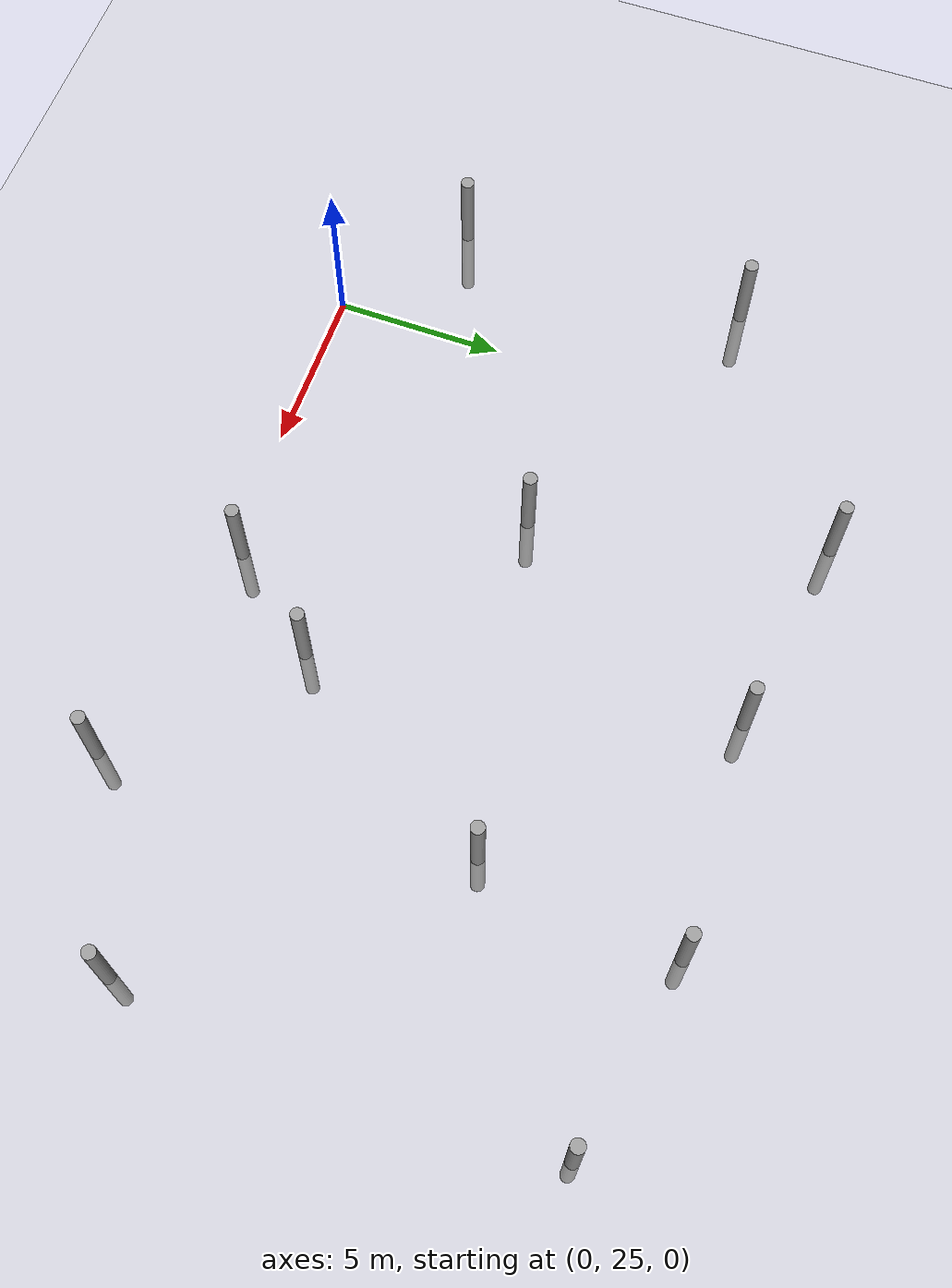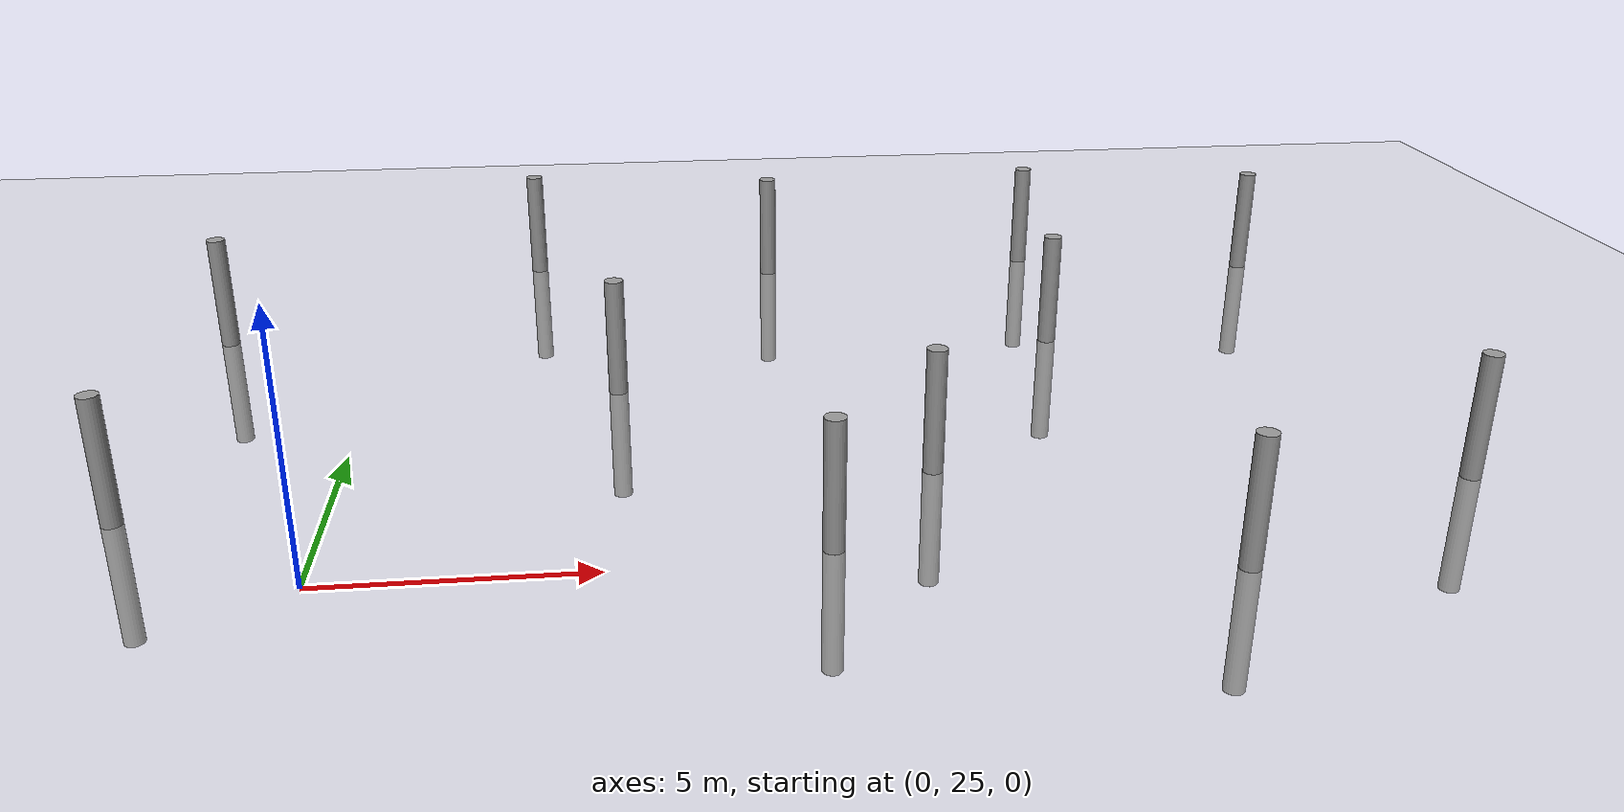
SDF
<sdf version="1.6">
 <world name="default">
  <model name="ground_plane">
   <static>1</static>
   <link name="link">
    <collision name="collision">
     <geometry><plane><normal>0 0 1</normal><size>100 100</size></plane></geometry>
     <surface><friction><ode><mu>100</mu><mu2>50</mu2></ode></friction></surface>
    </collision>
    <visual name="visual">
     <cast_shadows>0</cast_shadows>
     <geometry><plane><normal>0 0 1</normal><size>100 100</size></plane></geometry>
     <material>
      <script><uri>file://media/materials/scripts/gazebo.material</uri><name>Gazebo/Grey</name></script>
     </material>
    </visual>
   </link>
  </model>
  <model name="empty_pillars_4">
   <model name="empty_pillar">
    <link name="link">
     <inertial>
      <mass>1</mass>
      <inertia><ixx>0.145833</ixx><ixy>0</ixy><ixz>0</ixz><iyy>0.145833</iyy><iyz>0</iyz><izz>0.125</izz></inertia>
     </inertial>
     <visual name="visual">
      <geometry><cylinder><radius>0.2</radius><length>5</length></cylinder></geometry>
      <material>
       <script><name>Gazebo/Grey</name><uri>file://media/materials/scripts/gazebo.material</uri></script>
       <shader type="vertex"><normal_map>__default__</normal_map></shader>
       <ambient>0.3 0.3 0.3 1</ambient>
       <diffuse>0.7 0.7 0.7 1</diffuse>
       <specular>0.01 0.01 0.01 1</specular>
       <emissive>0 0 0 1</emissive>
      </material>
     </visual>
     <collision name="collision">
      <geometry><cylinder><radius>0.05</radius><length>5</length></cylinder></geometry>
      <surface>
       <friction>
        <ode><mu>1</mu><mu2>1</mu2><fdir1>0 0 0</fdir1><slip1>0</slip1><slip2>0</slip2></ode>
        <torsional>
         <coefficient>1</coefficient>
         <patch_radius>0</patch_radius>
         <surface_radius>0</surface_radius>
         <use_patch_radius>1</use_patch_radius>
         <ode><slip>0</slip></ode>
        </torsional>
       </friction>
       <bounce><restitution_coefficient>0</restitution_coefficient><threshold>1e+06</threshold></bounce>
       <contact>
        <collide_without_contact>0</collide_without_contact>
        <collide_without_contact_bitmask>1</collide_without_contact_bitmask>
        <collide_bitmask>1</collide_bitmask>
        <ode>
         <soft_cfm>0</soft_cfm>
         <soft_erp>0.2</soft_erp>
         <kp>1e+13</kp>
         <kd>1</kd>
         <max_vel>0.01</max_vel>
         <min_depth>0</min_depth>
        </ode>
        <bullet>
         <split_impulse>1</split_impulse>
         <split_impulse_penetration_threshold>-0.01</split_impulse_penetration_threshold>
         <soft_cfm>0</soft_cfm>
         <soft_erp>0.2</soft_erp>
         <kp>1e+13</kp>
         <kd>1</kd>
        </bullet>
       </contact>
      </surface>
     </collision>
    </link>
    <static>0</static>
    <pose>-3.84527 -0.717439 0 0 -0 0</pose>
   </model>
   <model name="empty_pillar_clone_14">
    <link name="link">
     <inertial>
      <mass>1</mass>
      <inertia><ixx>0.145833</ixx><ixy>0</ixy><ixz>0</ixz><iyy>0.145833</iyy><iyz>0</iyz><izz>0.125</izz></inertia>
     </inertial>
     <visual name="visual">
      <geometry><cylinder><radius>0.2</radius><length>5</length></cylinder></geometry>
      <material>
       <script><name>Gazebo/Grey</name><uri>file://media/materials/scripts/gazebo.material</uri></script>
       <shader type="vertex"><normal_map>__default__</normal_map></shader>
       <ambient>0.3 0.3 0.3 1</ambient>
       <diffuse>0.7 0.7 0.7 1</diffuse>
       <specular>0.01 0.01 0.01 1</specular>
       <emissive>0 0 0 1</emissive>
      </material>
     </visual>
     <collision name="collision">
      <geometry><cylinder><radius>0.05</radius><length>5</length></cylinder></geometry>
      <surface>
       <friction>
        <ode><mu>1</mu><mu2>1</mu2><fdir1>0 0 0</fdir1><slip1>0</slip1><slip2>0</slip2></ode>
        <torsional>
         <coefficient>1</coefficient>
         <patch_radius>0</patch_radius>
         <surface_radius>0</surface_radius>
         <use_patch_radius>1</use_patch_radius>
         <ode><slip>0</slip></ode>
        </torsional>
       </friction>
       <bounce><restitution_coefficient>0</restitution_coefficient><threshold>1e+06</threshold></bounce>
       <contact>
        <collide_without_contact>0</collide_without_contact>
        <collide_without_contact_bitmask>1</collide_without_contact_bitmask>
        <collide_bitmask>1</collide_bitmask>
        <ode>
         <soft_cfm>0</soft_cfm>
         <soft_erp>0.2</soft_erp>
         <kp>1e+13</kp>
         <kd>1</kd>
         <max_vel>0.01</max_vel>
         <min_depth>0</min_depth>
        </ode>
        <bullet>
         <split_impulse>1</split_impulse>
         <split_impulse_penetration_threshold>-0.01</split_impulse_penetration_threshold>
         <soft_cfm>0</soft_cfm>
         <soft_erp>0.2</soft_erp>
         <kp>1e+13</kp>
         <kd>1</kd>
        </bullet>
       </contact>
      </surface>
     </collision>
    </link>
    <static>0</static>
    <pose>-14.0146 0.646152 0 0 -0 0</pose>
   </model>
   <model name="empty_pillar_clone_15">
    <link name="link">
     <inertial>
      <mass>1</mass>
      <inertia><ixx>0.145833</ixx><ixy>0</ixy><ixz>0</ixz><iyy>0.145833</iyy><iyz>0</iyz><izz>0.125</izz></inertia>
     </inertial>
     <visual name="visual">
      <geometry><cylinder><radius>0.2</radius><length>5</length></cylinder></geometry>
      <material>
       <script><name>Gazebo/Grey</name><uri>file://media/materials/scripts/gazebo.material</uri></script>
       <shader type="vertex"><normal_map>__default__</normal_map></shader>
       <ambient>0.3 0.3 0.3 1</ambient>
       <diffuse>0.7 0.7 0.7 1</diffuse>
       <specular>0.01 0.01 0.01 1</specular>
       <emissive>0 0 0 1</emissive>
      </material>
     </visual>
     <collision name="collision">
      <geometry><cylinder><radius>0.05</radius><length>5</length></cylinder></geometry>
      <surface>
       <friction>
        <ode><mu>1</mu><mu2>1</mu2><fdir1>0 0 0</fdir1><slip1>0</slip1><slip2>0</slip2></ode>
        <torsional>
         <coefficient>1</coefficient>
         <patch_radius>0</patch_radius>
         <surface_radius>0</surface_radius>
         <use_patch_radius>1</use_patch_radius>
         <ode><slip>0</slip></ode>
        </torsional>
       </friction>
       <bounce><restitution_coefficient>0</restitution_coefficient><threshold>1e+06</threshold></bounce>
       <contact>
        <collide_without_contact>0</collide_without_contact>
        <collide_without_contact_bitmask>1</collide_without_contact_bitmask>
        <collide_bitmask>1</collide_bitmask>
        <ode>
         <soft_cfm>0</soft_cfm>
         <soft_erp>0.2</soft_erp>
         <kp>1e+13</kp>
         <kd>1</kd>
         <max_vel>0.01</max_vel>
         <min_depth>0</min_depth>
        </ode>
        <bullet>
         <split_impulse>1</split_impulse>
         <split_impulse_penetration_threshold>-0.01</split_impulse_penetration_threshold>
         <soft_cfm>0</soft_cfm>
         <soft_erp>0.2</soft_erp>
         <kp>1e+13</kp>
         <kd>1</kd>
        </bullet>
       </contact>
      </surface>
     </collision>
    </link>
    <static>0</static>
    <pose>-9.37193 -3.58732 0 0 -0 0</pose>
   </model>
   <model name="empty_pillar_clone_16">
    <link name="link">
     <inertial>
      <mass>1</mass>
      <inertia><ixx>0.145833</ixx><ixy>0</ixy><ixz>0</ixz><iyy>0.145833</iyy><iyz>0</iyz><izz>0.125</izz></inertia>
     </inertial>
     <visual name="visual">
      <geometry><cylinder><radius>0.2</radius><length>5</length></cylinder></geometry>
      <material>
       <script><name>Gazebo/Grey</name><uri>file://media/materials/scripts/gazebo.material</uri></script>
       <shader type="vertex"><normal_map>__default__</normal_map></shader>
       <ambient>0.3 0.3 0.3 1</ambient>
       <diffuse>0.7 0.7 0.7 1</diffuse>
       <specular>0.01 0.01 0.01 1</specular>
       <emissive>0 0 0 1</emissive>
      </material>
     </visual>
     <collision name="collision">
      <geometry><cylinder><radius>0.05</radius><length>5</length></cylinder></geometry>
      <surface>
       <friction>
        <ode><mu>1</mu><mu2>1</mu2><fdir1>0 0 0</fdir1><slip1>0</slip1><slip2>0</slip2></ode>
        <torsional>
         <coefficient>1</coefficient>
         <patch_radius>0</patch_radius>
         <surface_radius>0</surface_radius>
         <use_patch_radius>1</use_patch_radius>
         <ode><slip>0</slip></ode>
        </torsional>
       </friction>
       <bounce><restitution_coefficient>0</restitution_coefficient><threshold>1e+06</threshold></bounce>
       <contact>
        <collide_without_contact>0</collide_without_contact>
        <collide_without_contact_bitmask>1</collide_without_contact_bitmask>
        <collide_bitmask>1</collide_bitmask>
        <ode>
         <soft_cfm>0</soft_cfm>
         <soft_erp>0.2</soft_erp>
         <kp>1e+13</kp>
         <kd>1</kd>
         <max_vel>0.01</max_vel>
         <min_depth>0</min_depth>
        </ode>
        <bullet>
         <split_impulse>1</split_impulse>
         <split_impulse_penetration_threshold>-0.01</split_impulse_penetration_threshold>
         <soft_cfm>0</soft_cfm>
         <soft_erp>0.2</soft_erp>
         <kp>1e+13</kp>
         <kd>1</kd>
        </bullet>
       </contact>
      </surface>
     </collision>
    </link>
    <static>0</static>
    <pose>-9.20789 13.0504 0 0 -0 0</pose>
   </model>
   <model name="empty_pillar_clone_17">
    <link name="link">
     <inertial>
      <mass>1</mass>
      <inertia><ixx>0.145833</ixx><ixy>0</ixy><ixz>0</ixz><iyy>0.145833</iyy><iyz>0</iyz><izz>0.125</izz></inertia>
     </inertial>
     <visual name="visual">
      <geometry><cylinder><radius>0.2</radius><length>5</length></cylinder></geometry>
      <material>
       <script><name>Gazebo/Grey</name><uri>file://media/materials/scripts/gazebo.material</uri></script>
       <shader type="vertex"><normal_map>__default__</normal_map></shader>
       <ambient>0.3 0.3 0.3 1</ambient>
       <diffuse>0.7 0.7 0.7 1</diffuse>
       <specular>0.01 0.01 0.01 1</specular>
       <emissive>0 0 0 1</emissive>
      </material>
     </visual>
     <collision name="collision">
      <geometry><cylinder><radius>0.05</radius><length>5</length></cylinder></geometry>
      <surface>
       <friction>
        <ode><mu>1</mu><mu2>1</mu2><fdir1>0 0 0</fdir1><slip1>0</slip1><slip2>0</slip2></ode>
        <torsional>
         <coefficient>1</coefficient>
         <patch_radius>0</patch_radius>
         <surface_radius>0</surface_radius>
         <use_patch_radius>1</use_patch_radius>
         <ode><slip>0</slip></ode>
        </torsional>
       </friction>
       <bounce><restitution_coefficient>0</restitution_coefficient><threshold>1e+06</threshold></bounce>
       <contact>
        <collide_without_contact>0</collide_without_contact>
        <collide_without_contact_bitmask>1</collide_without_contact_bitmask>
        <collide_bitmask>1</collide_bitmask>
        <ode>
         <soft_cfm>0</soft_cfm>
         <soft_erp>0.2</soft_erp>
         <kp>1e+13</kp>
         <kd>1</kd>
         <max_vel>0.01</max_vel>
         <min_depth>0</min_depth>
        </ode>
        <bullet>
         <split_impulse>1</split_impulse>
         <split_impulse_penetration_threshold>-0.01</split_impulse_penetration_threshold>
         <soft_cfm>0</soft_cfm>
         <soft_erp>0.2</soft_erp>
         <kp>1e+13</kp>
         <kd>1</kd>
        </bullet>
       </contact>
      </surface>
     </collision>
    </link>
    <static>0</static>
    <pose>-16.0449 12.755 0 0 -0 0</pose>
   </model>
   <model name="empty_pillar_clone_18">
    <link name="link">
     <inertial>
      <mass>1</mass>
      <inertia><ixx>0.145833</ixx><ixy>0</ixy><ixz>0</ixz><iyy>0.145833</iyy><iyz>0</iyz><izz>0.125</izz></inertia>
     </inertial>
     <visual name="visual">
      <geometry><cylinder><radius>0.2</radius><length>5</length></cylinder></geometry>
      <material>
       <script><name>Gazebo/Grey</name><uri>file://media/materials/scripts/gazebo.material</uri></script>
       <shader type="vertex"><normal_map>__default__</normal_map></shader>
       <ambient>0.3 0.3 0.3 1</ambient>
       <diffuse>0.7 0.7 0.7 1</diffuse>
       <specular>0.01 0.01 0.01 1</specular>
       <emissive>0 0 0 1</emissive>
      </material>
     </visual>
     <collision name="collision">
      <geometry><cylinder><radius>0.05</radius><length>5</length></cylinder></geometry>
      <surface>
       <friction>
        <ode><mu>1</mu><mu2>1</mu2><fdir1>0 0 0</fdir1><slip1>0</slip1><slip2>0</slip2></ode>
        <torsional>
         <coefficient>1</coefficient>
         <patch_radius>0</patch_radius>
         <surface_radius>0</surface_radius>
         <use_patch_radius>1</use_patch_radius>
         <ode><slip>0</slip></ode>
        </torsional>
       </friction>
       <bounce><restitution_coefficient>0</restitution_coefficient><threshold>1e+06</threshold></bounce>
       <contact>
        <collide_without_contact>0</collide_without_contact>
        <collide_without_contact_bitmask>1</collide_without_contact_bitmask>
        <collide_bitmask>1</collide_bitmask>
        <ode>
         <soft_cfm>0</soft_cfm>
         <soft_erp>0.2</soft_erp>
         <kp>1e+13</kp>
         <kd>1</kd>
         <max_vel>0.01</max_vel>
         <min_depth>0</min_depth>
        </ode>
        <bullet>
         <split_impulse>1</split_impulse>
         <split_impulse_penetration_threshold>-0.01</split_impulse_penetration_threshold>
         <soft_cfm>0</soft_cfm>
         <soft_erp>0.2</soft_erp>
         <kp>1e+13</kp>
         <kd>1</kd>
        </bullet>
       </contact>
      </surface>
     </collision>
    </link>
    <static>0</static>
    <pose>-20.0146 5.15966 0 0 -0 0</pose>
   </model>
   <model name="empty_pillar_clone_19">
    <link name="link">
     <inertial>
      <mass>1</mass>
      <inertia><ixx>0.145833</ixx><ixy>0</ixy><ixz>0</ixz><iyy>0.145833</iyy><iyz>0</iyz><izz>0.125</izz></inertia>
     </inertial>
     <visual name="visual">
      <geometry><cylinder><radius>0.2</radius><length>5</length></cylinder></geometry>
      <material>
       <script><name>Gazebo/Grey</name><uri>file://media/materials/scripts/gazebo.material</uri></script>
       <shader type="vertex"><normal_map>__default__</normal_map></shader>
       <ambient>0.3 0.3 0.3 1</ambient>
       <diffuse>0.7 0.7 0.7 1</diffuse>
       <specular>0.01 0.01 0.01 1</specular>
       <emissive>0 0 0 1</emissive>
      </material>
     </visual>
     <collision name="collision">
      <geometry><cylinder><radius>0.05</radius><length>5</length></cylinder></geometry>
      <surface>
       <friction>
        <ode><mu>1</mu><mu2>1</mu2><fdir1>0 0 0</fdir1><slip1>0</slip1><slip2>0</slip2></ode>
        <torsional>
         <coefficient>1</coefficient>
         <patch_radius>0</patch_radius>
         <surface_radius>0</surface_radius>
         <use_patch_radius>1</use_patch_radius>
         <ode><slip>0</slip></ode>
        </torsional>
       </friction>
       <bounce><restitution_coefficient>0</restitution_coefficient><threshold>1e+06</threshold></bounce>
       <contact>
        <collide_without_contact>0</collide_without_contact>
        <collide_without_contact_bitmask>1</collide_without_contact_bitmask>
        <collide_bitmask>1</collide_bitmask>
        <ode>
         <soft_cfm>0</soft_cfm>
         <soft_erp>0.2</soft_erp>
         <kp>1e+13</kp>
         <kd>1</kd>
         <max_vel>0.01</max_vel>
         <min_depth>0</min_depth>
        </ode>
        <bullet>
         <split_impulse>1</split_impulse>
         <split_impulse_penetration_threshold>-0.01</split_impulse_penetration_threshold>
         <soft_cfm>0</soft_cfm>
         <soft_erp>0.2</soft_erp>
         <kp>1e+13</kp>
         <kd>1</kd>
        </bullet>
       </contact>
      </surface>
     </collision>
    </link>
    <static>0</static>
    <pose>-10.0146 7.15966 0 0 -0 0</pose>
   </model>
   <model name="empty_pillar_clone_24">
    <link name="link">
     <inertial>
      <mass>1</mass>
      <inertia><ixx>0.145833</ixx><ixy>0</ixy><ixz>0</ixz><iyy>0.145833</iyy><iyz>0</iyz><izz>0.125</izz></inertia>
     </inertial>
     <visual name="visual">
      <geometry><cylinder><radius>0.2</radius><length>5</length></cylinder></geometry>
      <material>
       <script><name>Gazebo/Grey</name><uri>file://media/materials/scripts/gazebo.material</uri></script>
       <shader type="vertex"><normal_map>__default__</normal_map></shader>
       <ambient>0.3 0.3 0.3 1</ambient>
       <diffuse>0.7 0.7 0.7 1</diffuse>
       <specular>0.01 0.01 0.01 1</specular>
       <emissive>0 0 0 1</emissive>
      </material>
     </visual>
     <collision name="collision">
      <geometry><cylinder><radius>0.05</radius><length>5</length></cylinder></geometry>
      <surface>
       <friction>
        <ode><mu>1</mu><mu2>1</mu2><fdir1>0 0 0</fdir1><slip1>0</slip1><slip2>0</slip2></ode>
        <torsional>
         <coefficient>1</coefficient>
         <patch_radius>0</patch_radius>
         <surface_radius>0</surface_radius>
         <use_patch_radius>1</use_patch_radius>
         <ode><slip>0</slip></ode>
        </torsional>
       </friction>
       <bounce><restitution_coefficient>0</restitution_coefficient><threshold>1e+06</threshold></bounce>
       <contact>
        <collide_without_contact>0</collide_without_contact>
        <collide_without_contact_bitmask>1</collide_without_contact_bitmask>
        <collide_bitmask>1</collide_bitmask>
        <ode>
         <soft_cfm>0</soft_cfm>
         <soft_erp>0.2</soft_erp>
         <kp>1e+13</kp>
         <kd>1</kd>
         <max_vel>0.01</max_vel>
         <min_depth>0</min_depth>
        </ode>
        <bullet>
         <split_impulse>1</split_impulse>
         <split_impulse_penetration_threshold>-0.01</split_impulse_penetration_threshold>
         <soft_cfm>0</soft_cfm>
         <soft_erp>0.2</soft_erp>
         <kp>1e+13</kp>
         <kd>1</kd>
        </bullet>
       </contact>
      </surface>
     </collision>
    </link>
    <static>0</static>
    <pose>-3.46957 11.9413 0 0 -0 0</pose>
   </model>
   <model name="empty_pillar_clone_38">
    <link name="link">
     <inertial>
      <mass>1</mass>
      <inertia><ixx>0.145833</ixx><ixy>0</ixy><ixz>0</ixz><iyy>0.145833</iyy><iyz>0</iyz><izz>0.125</izz></inertia>
     </inertial>
     <visual name="visual">
      <geometry><cylinder><radius>0.2</radius><length>5</length></cylinder></geometry>
      <material>
       <script><name>Gazebo/Grey</name><uri>file://media/materials/scripts/gazebo.material</uri></script>
       <shader type="vertex"><normal_map>__default__</normal_map></shader>
       <ambient>0.3 0.3 0.3 1</ambient>
       <diffuse>0.7 0.7 0.7 1</diffuse>
       <specular>0.01 0.01 0.01 1</specular>
       <emissive>0 0 0 1</emissive>
      </material>
     </visual>
     <collision name="collision">
      <geometry><cylinder><radius>0.05</radius><length>5</length></cylinder></geometry>
      <surface>
       <friction>
        <ode><mu>1</mu><mu2>1</mu2><fdir1>0 0 0</fdir1><slip1>0</slip1><slip2>0</slip2></ode>
        <torsional>
         <coefficient>1</coefficient>
         <patch_radius>0</patch_radius>
         <surface_radius>0</surface_radius>
         <use_patch_radius>1</use_patch_radius>
         <ode><slip>0</slip></ode>
        </torsional>
       </friction>
       <bounce><restitution_coefficient>0</restitution_coefficient><threshold>1e+06</threshold></bounce>
       <contact>
        <collide_without_contact>0</collide_without_contact>
        <collide_without_contact_bitmask>1</collide_without_contact_bitmask>
        <collide_bitmask>1</collide_bitmask>
        <ode>
         <soft_cfm>0</soft_cfm>
         <soft_erp>0.2</soft_erp>
         <kp>1e+13</kp>
         <kd>1</kd>
         <max_vel>0.01</max_vel>
         <min_depth>0</min_depth>
        </ode>
        <bullet>
         <split_impulse>1</split_impulse>
         <split_impulse_penetration_threshold>-0.01</split_impulse_penetration_threshold>
         <soft_cfm>0</soft_cfm>
         <soft_erp>0.2</soft_erp>
         <kp>1e+13</kp>
         <kd>1</kd>
        </bullet>
       </contact>
      </surface>
     </collision>
    </link>
    <static>0</static>
    <pose>-16.33 -2.21607 0 0 -0 0</pose>
   </model>
   <model name="empty_pillar_clone_50">
    <link name="link">
     <inertial>
      <mass>1</mass>
      <inertia><ixx>0.145833</ixx><ixy>0</ixy><ixz>0</ixz><iyy>0.145833</iyy><iyz>0</iyz><izz>0.125</izz></inertia>
     </inertial>
     <visual name="visual">
      <geometry><cylinder><radius>0.2</radius><length>5</length></cylinder></geometry>
      <material>
       <script><name>Gazebo/Grey</name><uri>file://media/materials/scripts/gazebo.material</uri></script>
       <shader type="vertex"><normal_map>__default__</normal_map></shader>
       <ambient>0.3 0.3 0.3 1</ambient>
       <diffuse>0.7 0.7 0.7 1</diffuse>
       <specular>0.01 0.01 0.01 1</specular>
       <emissive>0 0 0 1</emissive>
      </material>
     </visual>
     <collision name="collision">
      <geometry><cylinder><radius>0.05</radius><length>5</length></cylinder></geometry>
      <surface>
       <friction>
        <ode><mu>1</mu><mu2>1</mu2><fdir1>0 0 0</fdir1><slip1>0</slip1><slip2>0</slip2></ode>
        <torsional>
         <coefficient>1</coefficient>
         <patch_radius>0</patch_radius>
         <surface_radius>0</surface_radius>
         <use_patch_radius>1</use_patch_radius>
         <ode><slip>0</slip></ode>
        </torsional>
       </friction>
       <bounce><restitution_coefficient>0</restitution_coefficient><threshold>1e+06</threshold></bounce>
       <contact>
        <collide_without_contact>0</collide_without_contact>
        <collide_without_contact_bitmask>1</collide_without_contact_bitmask>
        <collide_bitmask>1</collide_bitmask>
        <ode>
         <soft_cfm>0</soft_cfm>
         <soft_erp>0.2</soft_erp>
         <kp>1e+13</kp>
         <kd>1</kd>
         <max_vel>0.01</max_vel>
         <min_depth>0</min_depth>
        </ode>
        <bullet>
         <split_impulse>1</split_impulse>
         <split_impulse_penetration_threshold>-0.01</split_impulse_penetration_threshold>
         <soft_cfm>0</soft_cfm>
         <soft_erp>0.2</soft_erp>
         <kp>1e+13</kp>
         <kd>1</kd>
        </bullet>
       </contact>
      </surface>
     </collision>
    </link>
    <static>0</static>
    <pose>-22.0498 13.6251 0 0 -0 0</pose>
   </model>
   <static>0</static>
   <pose>25.2837 27.6164 0 0 -0 0</pose>
  </model>
  <model name="empty_pillars_5">
   <model name="empty_pillar_clone_31">
    <link name="link">
     <inertial>
      <mass>1</mass>
      <inertia><ixx>0.145833</ixx><ixy>0</ixy><ixz>0</ixz><iyy>0.145833</iyy><iyz>0</iyz><izz>0.125</izz></inertia>
     </inertial>
     <visual name="visual">
      <geometry><cylinder><radius>0.2</radius><length>5</length></cylinder></geometry>
      <material>
       <script><name>Gazebo/Grey</name><uri>file://media/materials/scripts/gazebo.material</uri></script>
       <shader type="vertex"><normal_map>__default__</normal_map></shader>
       <ambient>0.3 0.3 0.3 1</ambient>
       <diffuse>0.7 0.7 0.7 1</diffuse>
       <specular>0.01 0.01 0.01 1</specular>
       <emissive>0 0 0 1</emissive>
      </material>
     </visual>
     <collision name="collision">
      <geometry><cylinder><radius>0.05</radius><length>5</length></cylinder></geometry>
      <surface>
       <friction>
        <ode><mu>1</mu><mu2>1</mu2><fdir1>0 0 0</fdir1><slip1>0</slip1><slip2>0</slip2></ode>
        <torsional>
         <coefficient>1</coefficient>
         <patch_radius>0</patch_radius>
         <surface_radius>0</surface_radius>
         <use_patch_radius>1</use_patch_radius>
         <ode><slip>0</slip></ode>
        </torsional>
       </friction>
       <bounce><restitution_coefficient>0</restitution_coefficient><threshold>1e+06</threshold></bounce>
       <contact>
        <collide_without_contact>0</collide_without_contact>
        <collide_without_contact_bitmask>1</collide_without_contact_bitmask>
        <collide_bitmask>1</collide_bitmask>
        <ode>
         <soft_cfm>0</soft_cfm>
         <soft_erp>0.2</soft_erp>
         <kp>1e+13</kp>
         <kd>1</kd>
         <max_vel>0.01</max_vel>
         <min_depth>0</min_depth>
        </ode>
        <bullet>
         <split_impulse>1</split_impulse>
         <split_impulse_penetration_threshold>-0.01</split_impulse_penetration_threshold>
         <soft_cfm>0</soft_cfm>
         <soft_erp>0.2</soft_erp>
         <kp>1e+13</kp>
         <kd>1</kd>
        </bullet>
       </contact>
      </surface>
     </collision>
    </link>
    <static>0</static>
    <pose>22.0722 9.04182 0 0 -0 0</pose>
   </model>
   <model name="empty_pillar_clone_32">
    <link name="link">
     <inertial>
      <mass>1</mass>
      <inertia><ixx>0.145833</ixx><ixy>0</ixy><ixz>0</ixz><iyy>0.145833</iyy><iyz>0</iyz><izz>0.125</izz></inertia>
     </inertial>
     <visual name="visual">
      <geometry><cylinder><radius>0.2</radius><length>5</length></cylinder></geometry>
      <material>
       <script><name>Gazebo/Grey</name><uri>file://media/materials/scripts/gazebo.material</uri></script>
       <shader type="vertex"><normal_map>__default__</normal_map></shader>
       <ambient>0.3 0.3 0.3 1</ambient>
       <diffuse>0.7 0.7 0.7 1</diffuse>
       <specular>0.01 0.01 0.01 1</specular>
       <emissive>0 0 0 1</emissive>
      </material>
     </visual>
     <collision name="collision">
      <geometry><cylinder><radius>0.05</radius><length>5</length></cylinder></geometry>
      <surface>
       <friction>
        <ode><mu>1</mu><mu2>1</mu2><fdir1>0 0 0</fdir1><slip1>0</slip1><slip2>0</slip2></ode>
        <torsional>
         <coefficient>1</coefficient>
         <patch_radius>0</patch_radius>
         <surface_radius>0</surface_radius>
         <use_patch_radius>1</use_patch_radius>
         <ode><slip>0</slip></ode>
        </torsional>
       </friction>
       <bounce><restitution_coefficient>0</restitution_coefficient><threshold>1e+06</threshold></bounce>
       <contact>
        <collide_without_contact>0</collide_without_contact>
        <collide_without_contact_bitmask>1</collide_without_contact_bitmask>
        <collide_bitmask>1</collide_bitmask>
        <ode>
         <soft_cfm>0</soft_cfm>
         <soft_erp>0.2</soft_erp>
         <kp>1e+13</kp>
         <kd>1</kd>
         <max_vel>0.01</max_vel>
         <min_depth>0</min_depth>
        </ode>
        <bullet>
         <split_impulse>1</split_impulse>
         <split_impulse_penetration_threshold>-0.01</split_impulse_penetration_threshold>
         <soft_cfm>0</soft_cfm>
         <soft_erp>0.2</soft_erp>
         <kp>1e+13</kp>
         <kd>1</kd>
        </bullet>
       </contact>
      </surface>
     </collision>
    </link>
    <static>0</static>
    <pose>21.9854 0.15966 0 0 -0 0</pose>
   </model>
   <static>0</static>
   <pose>-25.786 27.5577 0 0 -0 0</pose>
  </model>
 </world>
</sdf>
